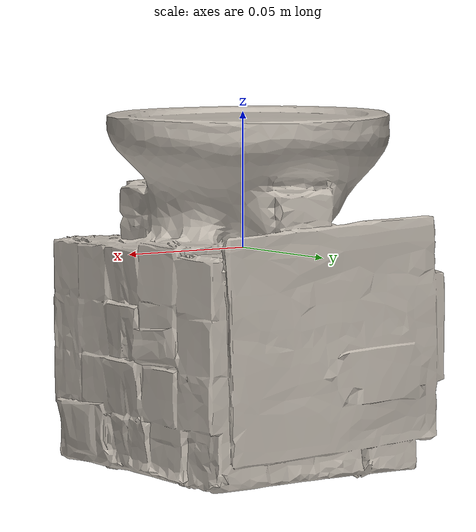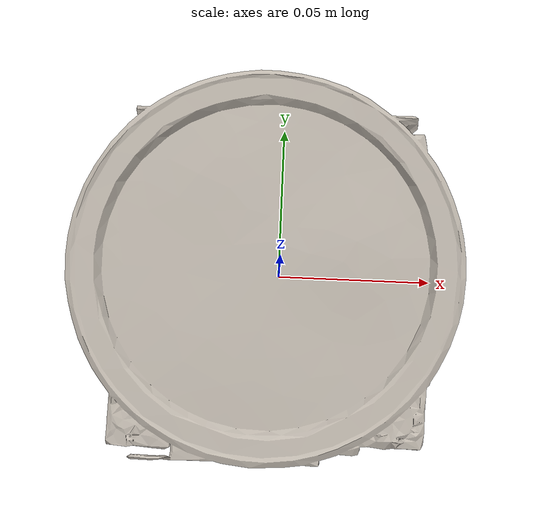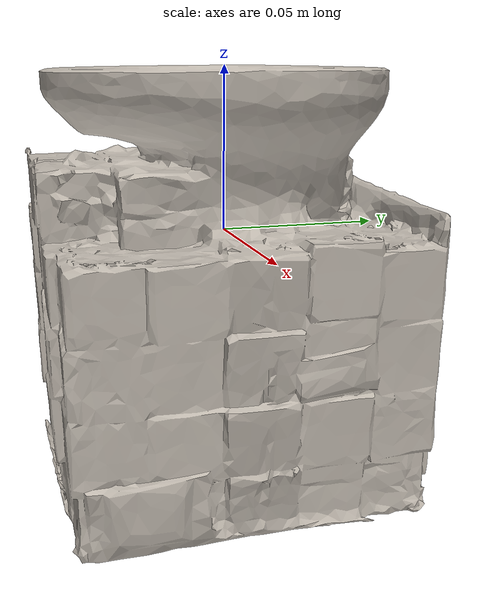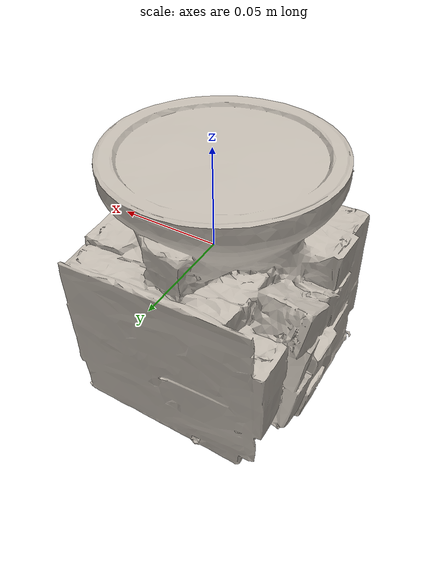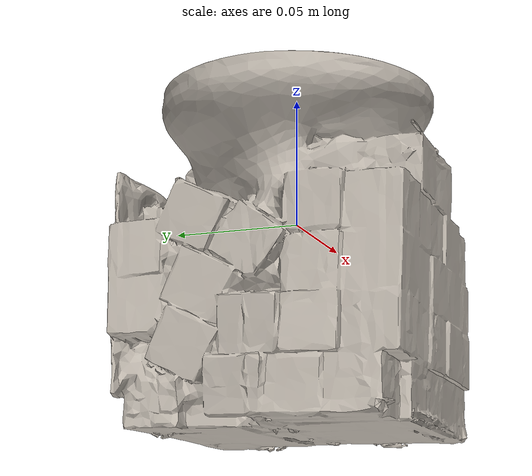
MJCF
<mujoco model="bread">
  <asset>
    <mesh file="nontextured.stl" name="obj_mesh" scale="0.8 0.8 0.8"/>
    <texture file="../../../../../textures/bread.png" type="2d" name="tex-bread" />
    <material name="bread" reflectance="0.7" texrepeat="15 15" texture="tex-bread" texuniform="true"/>
  </asset>
  <worldbody>
    <body>
      <body name="collision">
        <geom pos="-0.0194785 -0.009205500000000002 -0.08206350000000001" mesh="obj_mesh" type="mesh" solimp="0.998 0.998 0.001" solref="0.001 1" density="50" friction="0.95 0.3 0.1"  material="bread" group="1" condim="4"/>
      </body>
      <body name="visual">
        <geom pos="-0.0194785 -0.009205500000000002 -0.08206350000000001" mesh="obj_mesh" type="mesh" material="bread"  conaffinity="0" contype="0"  group="0" mass="0.0001"/>
        <geom pos="-0.0194785 -0.009205500000000002 -0.08206350000000001" mesh="obj_mesh" type="mesh" material="bread"  conaffinity="0" contype="0"  group="1" mass="0.0001"/>
      </body>
      <site rgba="0 0 0 0" size="0.005" pos="0 0 -0.0826895" name="bottom_site"/>
      <site rgba="0 0 0 0" size="0.005" pos="0 0 0.0826895" name="top_site"/>
      <site rgba="0 0 0 0" size="0.005" pos="0.0710485 0.0705875 0.0826895" name="horizontal_radius_site"/>
    </body>
  </worldbody>
</mujoco>
